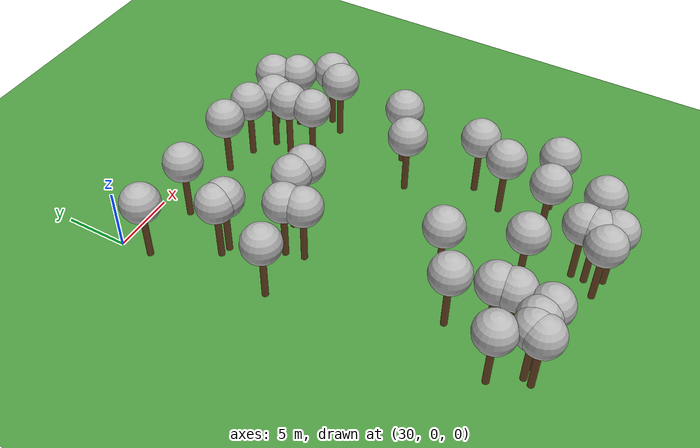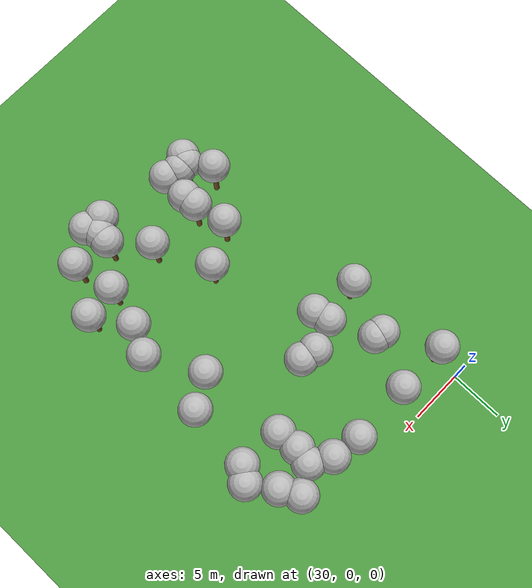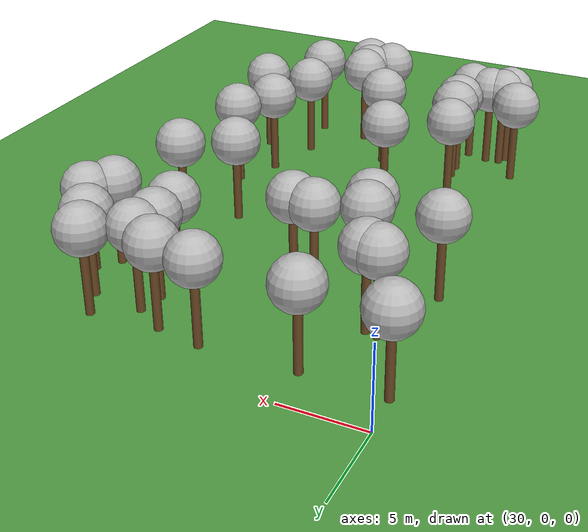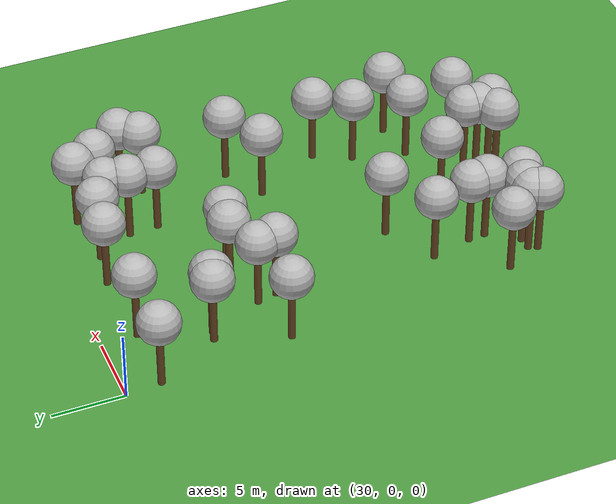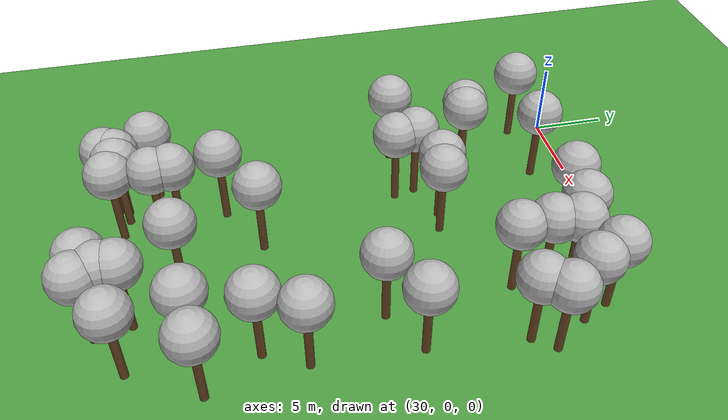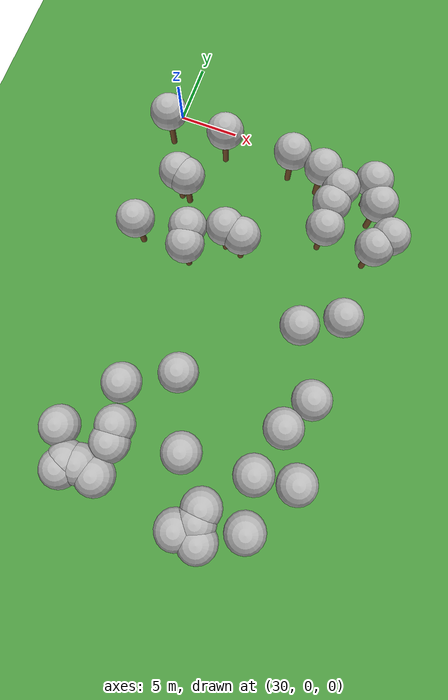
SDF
<sdf version="1.5">
 <world name="default">
  <model name="tree_simple473">
   <static>1</static>
   <link name="link">
    <pose>0 0 0.1 0 -0 0</pose>
    <collision name="collision_trunk">
     <pose>0 0 2 0 -0 0</pose>
     <geometry><cylinder><radius>0.25</radius><length>4</length></cylinder></geometry>
    </collision>
    <collision name="collision_treetop">
     <pose>0 0 5.2 0 -0 0</pose>
     <geometry><sphere><radius>1.5</radius></sphere></geometry>
    </collision>
    <visual name="trunk">
     <pose>0 0 2 0 -0 0</pose>
     <geometry><cylinder><radius>0.25</radius><length>4</length></cylinder></geometry>
     <material>
      <script>
       <uri>model://tree_simple/scripts</uri>
       <uri>model://tree_simple/materials/textures</uri>
       <name>TreeSimple/Trunk</name>
      </script>
     </material>
    </visual>
    <visual name="treetop">
     <pose>0 0 5.2 0 -0 0</pose>
     <geometry><sphere><radius>1.5</radius></sphere></geometry>
     <material>
      <script>
       <uri>model://tree_simple/scripts</uri>
       <uri>model://tree_simple/materials/textures</uri>
       <name>TreeSimple/Treetop</name>
      </script>
     </material>
    </visual>
   </link>
   <pose>35.3600050295 -12.4568326028 0 0 -0 0</pose>
  </model>
  <model name="tree_simple468">
   <static>1</static>
   <link name="link">
    <pose>0 0 0.1 0 -0 0</pose>
    <collision name="collision_trunk">
     <pose>0 0 2 0 -0 0</pose>
     <geometry><cylinder><radius>0.25</radius><length>4</length></cylinder></geometry>
    </collision>
    <collision name="collision_treetop">
     <pose>0 0 5.2 0 -0 0</pose>
     <geometry><sphere><radius>1.5</radius></sphere></geometry>
    </collision>
    <visual name="trunk">
     <pose>0 0 2 0 -0 0</pose>
     <geometry><cylinder><radius>0.25</radius><length>4</length></cylinder></geometry>
     <material>
      <script>
       <uri>model://tree_simple/scripts</uri>
       <uri>model://tree_simple/materials/textures</uri>
       <name>TreeSimple/Trunk</name>
      </script>
     </material>
    </visual>
    <visual name="treetop">
     <pose>0 0 5.2 0 -0 0</pose>
     <geometry><sphere><radius>1.5</radius></sphere></geometry>
     <material>
      <script>
       <uri>model://tree_simple/scripts</uri>
       <uri>model://tree_simple/materials/textures</uri>
       <name>TreeSimple/Treetop</name>
      </script>
     </material>
    </visual>
   </link>
   <pose>33.4354348071 -7.20044037788 0 0 -0 0</pose>
  </model>
  <model name="tree_simple461">
   <static>1</static>
   <link name="link">
    <pose>0 0 0.1 0 -0 0</pose>
    <collision name="collision_trunk">
     <pose>0 0 2 0 -0 0</pose>
     <geometry><cylinder><radius>0.25</radius><length>4</length></cylinder></geometry>
    </collision>
    <collision name="collision_treetop">
     <pose>0 0 5.2 0 -0 0</pose>
     <geometry><sphere><radius>1.5</radius></sphere></geometry>
    </collision>
    <visual name="trunk">
     <pose>0 0 2 0 -0 0</pose>
     <geometry><cylinder><radius>0.25</radius><length>4</length></cylinder></geometry>
     <material>
      <script>
       <uri>model://tree_simple/scripts</uri>
       <uri>model://tree_simple/materials/textures</uri>
       <name>TreeSimple/Trunk</name>
      </script>
     </material>
    </visual>
    <visual name="treetop">
     <pose>0 0 5.2 0 -0 0</pose>
     <geometry><sphere><radius>1.5</radius></sphere></geometry>
     <material>
      <script>
       <uri>model://tree_simple/scripts</uri>
       <uri>model://tree_simple/materials/textures</uri>
       <name>TreeSimple/Treetop</name>
      </script>
     </material>
    </visual>
   </link>
   <pose>48.4583895912 -13.8275705943 0 0 -0 0</pose>
  </model>
  <model name="tree_simple400">
   <static>1</static>
   <link name="link">
    <pose>0 0 0.1 0 -0 0</pose>
    <collision name="collision_trunk">
     <pose>0 0 2 0 -0 0</pose>
     <geometry><cylinder><radius>0.25</radius><length>4</length></cylinder></geometry>
    </collision>
    <collision name="collision_treetop">
     <pose>0 0 5.2 0 -0 0</pose>
     <geometry><sphere><radius>1.5</radius></sphere></geometry>
    </collision>
    <visual name="trunk">
     <pose>0 0 2 0 -0 0</pose>
     <geometry><cylinder><radius>0.25</radius><length>4</length></cylinder></geometry>
     <material>
      <script>
       <uri>model://tree_simple/scripts</uri>
       <uri>model://tree_simple/materials/textures</uri>
       <name>TreeSimple/Trunk</name>
      </script>
     </material>
    </visual>
    <visual name="treetop">
     <pose>0 0 5.2 0 -0 0</pose>
     <geometry><sphere><radius>1.5</radius></sphere></geometry>
     <material>
      <script>
       <uri>model://tree_simple/scripts</uri>
       <uri>model://tree_simple/materials/textures</uri>
       <name>TreeSimple/Treetop</name>
      </script>
     </material>
    </visual>
   </link>
   <pose>43.2651902792 -29.893141503 0 0 -0 0</pose>
  </model>
  <model name="tree_simple391">
   <static>1</static>
   <link name="link">
    <pose>0 0 0.1 0 -0 0</pose>
    <collision name="collision_trunk">
     <pose>0 0 2 0 -0 0</pose>
     <geometry><cylinder><radius>0.25</radius><length>4</length></cylinder></geometry>
    </collision>
    <collision name="collision_treetop">
     <pose>0 0 5.2 0 -0 0</pose>
     <geometry><sphere><radius>1.5</radius></sphere></geometry>
    </collision>
    <visual name="trunk">
     <pose>0 0 2 0 -0 0</pose>
     <geometry><cylinder><radius>0.25</radius><length>4</length></cylinder></geometry>
     <material>
      <script>
       <uri>model://tree_simple/scripts</uri>
       <uri>model://tree_simple/materials/textures</uri>
       <name>TreeSimple/Trunk</name>
      </script>
     </material>
    </visual>
    <visual name="treetop">
     <pose>0 0 5.2 0 -0 0</pose>
     <geometry><sphere><radius>1.5</radius></sphere></geometry>
     <material>
      <script>
       <uri>model://tree_simple/scripts</uri>
       <uri>model://tree_simple/materials/textures</uri>
       <name>TreeSimple/Treetop</name>
      </script>
     </material>
    </visual>
   </link>
   <pose>35.0521422103 -11.0450283788 0 0 -0 0</pose>
  </model>
  <model name="tree_simple390">
   <static>1</static>
   <link name="link">
    <pose>0 0 0.1 0 -0 0</pose>
    <collision name="collision_trunk">
     <pose>0 0 2 0 -0 0</pose>
     <geometry><cylinder><radius>0.25</radius><length>4</length></cylinder></geometry>
    </collision>
    <collision name="collision_treetop">
     <pose>0 0 5.2 0 -0 0</pose>
     <geometry><sphere><radius>1.5</radius></sphere></geometry>
    </collision>
    <visual name="trunk">
     <pose>0 0 2 0 -0 0</pose>
     <geometry><cylinder><radius>0.25</radius><length>4</length></cylinder></geometry>
     <material>
      <script>
       <uri>model://tree_simple/scripts</uri>
       <uri>model://tree_simple/materials/textures</uri>
       <name>TreeSimple/Trunk</name>
      </script>
     </material>
    </visual>
    <visual name="treetop">
     <pose>0 0 5.2 0 -0 0</pose>
     <geometry><sphere><radius>1.5</radius></sphere></geometry>
     <material>
      <script>
       <uri>model://tree_simple/scripts</uri>
       <uri>model://tree_simple/materials/textures</uri>
       <name>TreeSimple/Treetop</name>
      </script>
     </material>
    </visual>
   </link>
   <pose>34.8279648661 -23.7978261523 0 0 -0 0</pose>
  </model>
  <model name="tree_simple385">
   <static>1</static>
   <link name="link">
    <pose>0 0 0.1 0 -0 0</pose>
    <collision name="collision_trunk">
     <pose>0 0 2 0 -0 0</pose>
     <geometry><cylinder><radius>0.25</radius><length>4</length></cylinder></geometry>
    </collision>
    <collision name="collision_treetop">
     <pose>0 0 5.2 0 -0 0</pose>
     <geometry><sphere><radius>1.5</radius></sphere></geometry>
    </collision>
    <visual name="trunk">
     <pose>0 0 2 0 -0 0</pose>
     <geometry><cylinder><radius>0.25</radius><length>4</length></cylinder></geometry>
     <material>
      <script>
       <uri>model://tree_simple/scripts</uri>
       <uri>model://tree_simple/materials/textures</uri>
       <name>TreeSimple/Trunk</name>
      </script>
     </material>
    </visual>
    <visual name="treetop">
     <pose>0 0 5.2 0 -0 0</pose>
     <geometry><sphere><radius>1.5</radius></sphere></geometry>
     <material>
      <script>
       <uri>model://tree_simple/scripts</uri>
       <uri>model://tree_simple/materials/textures</uri>
       <name>TreeSimple/Treetop</name>
      </script>
     </material>
    </visual>
   </link>
   <pose>32.6946046779 -7.01468529962 0 0 -0 0</pose>
  </model>
  <model name="tree_simple380">
   <static>1</static>
   <link name="link">
    <pose>0 0 0.1 0 -0 0</pose>
    <collision name="collision_trunk">
     <pose>0 0 2 0 -0 0</pose>
     <geometry><cylinder><radius>0.25</radius><length>4</length></cylinder></geometry>
    </collision>
    <collision name="collision_treetop">
     <pose>0 0 5.2 0 -0 0</pose>
     <geometry><sphere><radius>1.5</radius></sphere></geometry>
    </collision>
    <visual name="trunk">
     <pose>0 0 2 0 -0 0</pose>
     <geometry><cylinder><radius>0.25</radius><length>4</length></cylinder></geometry>
     <material>
      <script>
       <uri>model://tree_simple/scripts</uri>
       <uri>model://tree_simple/materials/textures</uri>
       <name>TreeSimple/Trunk</name>
      </script>
     </material>
    </visual>
    <visual name="treetop">
     <pose>0 0 5.2 0 -0 0</pose>
     <geometry><sphere><radius>1.5</radius></sphere></geometry>
     <material>
      <script>
       <uri>model://tree_simple/scripts</uri>
       <uri>model://tree_simple/materials/textures</uri>
       <name>TreeSimple/Treetop</name>
      </script>
     </material>
    </visual>
   </link>
   <pose>49.0222625073 -7.79616728684 0 0 -0 0</pose>
  </model>
  <model name="tree_simple379">
   <static>1</static>
   <link name="link">
    <pose>0 0 0.1 0 -0 0</pose>
    <collision name="collision_trunk">
     <pose>0 0 2 0 -0 0</pose>
     <geometry><cylinder><radius>0.25</radius><length>4</length></cylinder></geometry>
    </collision>
    <collision name="collision_treetop">
     <pose>0 0 5.2 0 -0 0</pose>
     <geometry><sphere><radius>1.5</radius></sphere></geometry>
    </collision>
    <visual name="trunk">
     <pose>0 0 2 0 -0 0</pose>
     <geometry><cylinder><radius>0.25</radius><length>4</length></cylinder></geometry>
     <material>
      <script>
       <uri>model://tree_simple/scripts</uri>
       <uri>model://tree_simple/materials/textures</uri>
       <name>TreeSimple/Trunk</name>
      </script>
     </material>
    </visual>
    <visual name="treetop">
     <pose>0 0 5.2 0 -0 0</pose>
     <geometry><sphere><radius>1.5</radius></sphere></geometry>
     <material>
      <script>
       <uri>model://tree_simple/scripts</uri>
       <uri>model://tree_simple/materials/textures</uri>
       <name>TreeSimple/Treetop</name>
      </script>
     </material>
    </visual>
   </link>
   <pose>35.6338366469 -27.9469397224 0 0 -0 0</pose>
  </model>
  <model name="tree_simple374">
   <static>1</static>
   <link name="link">
    <pose>0 0 0.1 0 -0 0</pose>
    <collision name="collision_trunk">
     <pose>0 0 2 0 -0 0</pose>
     <geometry><cylinder><radius>0.25</radius><length>4</length></cylinder></geometry>
    </collision>
    <collision name="collision_treetop">
     <pose>0 0 5.2 0 -0 0</pose>
     <geometry><sphere><radius>1.5</radius></sphere></geometry>
    </collision>
    <visual name="trunk">
     <pose>0 0 2 0 -0 0</pose>
     <geometry><cylinder><radius>0.25</radius><length>4</length></cylinder></geometry>
     <material>
      <script>
       <uri>model://tree_simple/scripts</uri>
       <uri>model://tree_simple/materials/textures</uri>
       <name>TreeSimple/Trunk</name>
      </script>
     </material>
    </visual>
    <visual name="treetop">
     <pose>0 0 5.2 0 -0 0</pose>
     <geometry><sphere><radius>1.5</radius></sphere></geometry>
     <material>
      <script>
       <uri>model://tree_simple/scripts</uri>
       <uri>model://tree_simple/materials/textures</uri>
       <name>TreeSimple/Treetop</name>
      </script>
     </material>
    </visual>
   </link>
   <pose>45.5880490305 -15.4743351493 0 0 -0 0</pose>
  </model>
  <model name="tree_simple361">
   <static>1</static>
   <link name="link">
    <pose>0 0 0.1 0 -0 0</pose>
    <collision name="collision_trunk">
     <pose>0 0 2 0 -0 0</pose>
     <geometry><cylinder><radius>0.25</radius><length>4</length></cylinder></geometry>
    </collision>
    <collision name="collision_treetop">
     <pose>0 0 5.2 0 -0 0</pose>
     <geometry><sphere><radius>1.5</radius></sphere></geometry>
    </collision>
    <visual name="trunk">
     <pose>0 0 2 0 -0 0</pose>
     <geometry><cylinder><radius>0.25</radius><length>4</length></cylinder></geometry>
     <material>
      <script>
       <uri>model://tree_simple/scripts</uri>
       <uri>model://tree_simple/materials/textures</uri>
       <name>TreeSimple/Trunk</name>
      </script>
     </material>
    </visual>
    <visual name="treetop">
     <pose>0 0 5.2 0 -0 0</pose>
     <geometry><sphere><radius>1.5</radius></sphere></geometry>
     <material>
      <script>
       <uri>model://tree_simple/scripts</uri>
       <uri>model://tree_simple/materials/textures</uri>
       <name>TreeSimple/Treetop</name>
      </script>
     </material>
    </visual>
   </link>
   <pose>35.5366757962 -26.7239082098 0 0 -0 0</pose>
  </model>
  <model name="tree_simple352">
   <static>1</static>
   <link name="link">
    <pose>0 0 0.1 0 -0 0</pose>
    <collision name="collision_trunk">
     <pose>0 0 2 0 -0 0</pose>
     <geometry><cylinder><radius>0.25</radius><length>4</length></cylinder></geometry>
    </collision>
    <collision name="collision_treetop">
     <pose>0 0 5.2 0 -0 0</pose>
     <geometry><sphere><radius>1.5</radius></sphere></geometry>
    </collision>
    <visual name="trunk">
     <pose>0 0 2 0 -0 0</pose>
     <geometry><cylinder><radius>0.25</radius><length>4</length></cylinder></geometry>
     <material>
      <script>
       <uri>model://tree_simple/scripts</uri>
       <uri>model://tree_simple/materials/textures</uri>
       <name>TreeSimple/Trunk</name>
      </script>
     </material>
    </visual>
    <visual name="treetop">
     <pose>0 0 5.2 0 -0 0</pose>
     <geometry><sphere><radius>1.5</radius></sphere></geometry>
     <material>
      <script>
       <uri>model://tree_simple/scripts</uri>
       <uri>model://tree_simple/materials/textures</uri>
       <name>TreeSimple/Treetop</name>
      </script>
     </material>
    </visual>
   </link>
   <pose>37.7714253308 -10.085576638 0 0 -0 0</pose>
  </model>
  <model name="tree_simple330">
   <static>1</static>
   <link name="link">
    <pose>0 0 0.1 0 -0 0</pose>
    <collision name="collision_trunk">
     <pose>0 0 2 0 -0 0</pose>
     <geometry><cylinder><radius>0.25</radius><length>4</length></cylinder></geometry>
    </collision>
    <collision name="collision_treetop">
     <pose>0 0 5.2 0 -0 0</pose>
     <geometry><sphere><radius>1.5</radius></sphere></geometry>
    </collision>
    <visual name="trunk">
     <pose>0 0 2 0 -0 0</pose>
     <geometry><cylinder><radius>0.25</radius><length>4</length></cylinder></geometry>
     <material>
      <script>
       <uri>model://tree_simple/scripts</uri>
       <uri>model://tree_simple/materials/textures</uri>
       <name>TreeSimple/Trunk</name>
      </script>
     </material>
    </visual>
    <visual name="treetop">
     <pose>0 0 5.2 0 -0 0</pose>
     <geometry><sphere><radius>1.5</radius></sphere></geometry>
     <material>
      <script>
       <uri>model://tree_simple/scripts</uri>
       <uri>model://tree_simple/materials/textures</uri>
       <name>TreeSimple/Treetop</name>
      </script>
     </material>
    </visual>
   </link>
   <pose>46.6176543064 -30.3534647409 0 0 -0 0</pose>
  </model>
  <model name="tree_simple321">
   <static>1</static>
   <link name="link">
    <pose>0 0 0.1 0 -0 0</pose>
    <collision name="collision_trunk">
     <pose>0 0 2 0 -0 0</pose>
     <geometry><cylinder><radius>0.25</radius><length>4</length></cylinder></geometry>
    </collision>
    <collision name="collision_treetop">
     <pose>0 0 5.2 0 -0 0</pose>
     <geometry><sphere><radius>1.5</radius></sphere></geometry>
    </collision>
    <visual name="trunk">
     <pose>0 0 2 0 -0 0</pose>
     <geometry><cylinder><radius>0.25</radius><length>4</length></cylinder></geometry>
     <material>
      <script>
       <uri>model://tree_simple/scripts</uri>
       <uri>model://tree_simple/materials/textures</uri>
       <name>TreeSimple/Trunk</name>
      </script>
     </material>
    </visual>
    <visual name="treetop">
     <pose>0 0 5.2 0 -0 0</pose>
     <geometry><sphere><radius>1.5</radius></sphere></geometry>
     <material>
      <script>
       <uri>model://tree_simple/scripts</uri>
       <uri>model://tree_simple/materials/textures</uri>
       <name>TreeSimple/Treetop</name>
      </script>
     </material>
    </visual>
   </link>
   <pose>42.046648374 -31.7938593585 0 0 -0 0</pose>
  </model>
  <model name="tree_simple298">
   <static>1</static>
   <link name="link">
    <pose>0 0 0.1 0 -0 0</pose>
    <collision name="collision_trunk">
     <pose>0 0 2 0 -0 0</pose>
     <geometry><cylinder><radius>0.25</radius><length>4</length></cylinder></geometry>
    </collision>
    <collision name="collision_treetop">
     <pose>0 0 5.2 0 -0 0</pose>
     <geometry><sphere><radius>1.5</radius></sphere></geometry>
    </collision>
    <visual name="trunk">
     <pose>0 0 2 0 -0 0</pose>
     <geometry><cylinder><radius>0.25</radius><length>4</length></cylinder></geometry>
     <material>
      <script>
       <uri>model://tree_simple/scripts</uri>
       <uri>model://tree_simple/materials/textures</uri>
       <name>TreeSimple/Trunk</name>
      </script>
     </material>
    </visual>
    <visual name="treetop">
     <pose>0 0 5.2 0 -0 0</pose>
     <geometry><sphere><radius>1.5</radius></sphere></geometry>
     <material>
      <script>
       <uri>model://tree_simple/scripts</uri>
       <uri>model://tree_simple/materials/textures</uri>
       <name>TreeSimple/Treetop</name>
      </script>
     </material>
    </visual>
   </link>
   <pose>33.2901714534 -30.1267743678 0 0 -0 0</pose>
  </model>
  <model name="tree_simple278">
   <static>1</static>
   <link name="link">
    <pose>0 0 0.1 0 -0 0</pose>
    <collision name="collision_trunk">
     <pose>0 0 2 0 -0 0</pose>
     <geometry><cylinder><radius>0.25</radius><length>4</length></cylinder></geometry>
    </collision>
    <collision name="collision_treetop">
     <pose>0 0 5.2 0 -0 0</pose>
     <geometry><sphere><radius>1.5</radius></sphere></geometry>
    </collision>
    <visual name="trunk">
     <pose>0 0 2 0 -0 0</pose>
     <geometry><cylinder><radius>0.25</radius><length>4</length></cylinder></geometry>
     <material>
      <script>
       <uri>model://tree_simple/scripts</uri>
       <uri>model://tree_simple/materials/textures</uri>
       <name>TreeSimple/Trunk</name>
      </script>
     </material>
    </visual>
    <visual name="treetop">
     <pose>0 0 5.2 0 -0 0</pose>
     <geometry><sphere><radius>1.5</radius></sphere></geometry>
     <material>
      <script>
       <uri>model://tree_simple/scripts</uri>
       <uri>model://tree_simple/materials/textures</uri>
       <name>TreeSimple/Treetop</name>
      </script>
     </material>
    </visual>
   </link>
   <pose>38.4116061074 -21.7404675264 0 0 -0 0</pose>
  </model>
  <model name="tree_simple263">
   <static>1</static>
   <link name="link">
    <pose>0 0 0.1 0 -0 0</pose>
    <collision name="collision_trunk">
     <pose>0 0 2 0 -0 0</pose>
     <geometry><cylinder><radius>0.25</radius><length>4</length></cylinder></geometry>
    </collision>
    <collision name="collision_treetop">
     <pose>0 0 5.2 0 -0 0</pose>
     <geometry><sphere><radius>1.5</radius></sphere></geometry>
    </collision>
    <visual name="trunk">
     <pose>0 0 2 0 -0 0</pose>
     <geometry><cylinder><radius>0.25</radius><length>4</length></cylinder></geometry>
     <material>
      <script>
       <uri>model://tree_simple/scripts</uri>
       <uri>model://tree_simple/materials/textures</uri>
       <name>TreeSimple/Trunk</name>
      </script>
     </material>
    </visual>
    <visual name="treetop">
     <pose>0 0 5.2 0 -0 0</pose>
     <geometry><sphere><radius>1.5</radius></sphere></geometry>
     <material>
      <script>
       <uri>model://tree_simple/scripts</uri>
       <uri>model://tree_simple/materials/textures</uri>
       <name>TreeSimple/Treetop</name>
      </script>
     </material>
    </visual>
   </link>
   <pose>40.6294575453 -26.8945764261 0 0 -0 0</pose>
  </model>
  <model name="tree_simple244">
   <static>1</static>
   <link name="link">
    <pose>0 0 0.1 0 -0 0</pose>
    <collision name="collision_trunk">
     <pose>0 0 2 0 -0 0</pose>
     <geometry><cylinder><radius>0.25</radius><length>4</length></cylinder></geometry>
    </collision>
    <collision name="collision_treetop">
     <pose>0 0 5.2 0 -0 0</pose>
     <geometry><sphere><radius>1.5</radius></sphere></geometry>
    </collision>
    <visual name="trunk">
     <pose>0 0 2 0 -0 0</pose>
     <geometry><cylinder><radius>0.25</radius><length>4</length></cylinder></geometry>
     <material>
      <script>
       <uri>model://tree_simple/scripts</uri>
       <uri>model://tree_simple/materials/textures</uri>
       <name>TreeSimple/Trunk</name>
      </script>
     </material>
    </visual>
    <visual name="treetop">
     <pose>0 0 5.2 0 -0 0</pose>
     <geometry><sphere><radius>1.5</radius></sphere></geometry>
     <material>
      <script>
       <uri>model://tree_simple/scripts</uri>
       <uri>model://tree_simple/materials/textures</uri>
       <name>TreeSimple/Treetop</name>
      </script>
     </material>
    </visual>
   </link>
   <pose>45.1720023685 -3.9344800414 0 0 -0 0</pose>
  </model>
  <model name="tree_simple243">
   <static>1</static>
   <link name="link">
    <pose>0 0 0.1 0 -0 0</pose>
    <collision name="collision_trunk">
     <pose>0 0 2 0 -0 0</pose>
     <geometry><cylinder><radius>0.25</radius><length>4</length></cylinder></geometry>
    </collision>
    <collision name="collision_treetop">
     <pose>0 0 5.2 0 -0 0</pose>
     <geometry><sphere><radius>1.5</radius></sphere></geometry>
    </collision>
    <visual name="trunk">
     <pose>0 0 2 0 -0 0</pose>
     <geometry><cylinder><radius>0.25</radius><length>4</length></cylinder></geometry>
     <material>
      <script>
       <uri>model://tree_simple/scripts</uri>
       <uri>model://tree_simple/materials/textures</uri>
       <name>TreeSimple/Trunk</name>
      </script>
     </material>
    </visual>
    <visual name="treetop">
     <pose>0 0 5.2 0 -0 0</pose>
     <geometry><sphere><radius>1.5</radius></sphere></geometry>
     <material>
      <script>
       <uri>model://tree_simple/scripts</uri>
       <uri>model://tree_simple/materials/textures</uri>
       <name>TreeSimple/Treetop</name>
      </script>
     </material>
    </visual>
   </link>
   <pose>48.9656449897 -26.1871742827 0 0 -0 0</pose>
  </model>
  <model name="tree_simple235">
   <static>1</static>
   <link name="link">
    <pose>0 0 0.1 0 -0 0</pose>
    <collision name="collision_trunk">
     <pose>0 0 2 0 -0 0</pose>
     <geometry><cylinder><radius>0.25</radius><length>4</length></cylinder></geometry>
    </collision>
    <collision name="collision_treetop">
     <pose>0 0 5.2 0 -0 0</pose>
     <geometry><sphere><radius>1.5</radius></sphere></geometry>
    </collision>
    <visual name="trunk">
     <pose>0 0 2 0 -0 0</pose>
     <geometry><cylinder><radius>0.25</radius><length>4</length></cylinder></geometry>
     <material>
      <script>
       <uri>model://tree_simple/scripts</uri>
       <uri>model://tree_simple/materials/textures</uri>
       <name>TreeSimple/Trunk</name>
      </script>
     </material>
    </visual>
    <visual name="treetop">
     <pose>0 0 5.2 0 -0 0</pose>
     <geometry><sphere><radius>1.5</radius></sphere></geometry>
     <material>
      <script>
       <uri>model://tree_simple/scripts</uri>
       <uri>model://tree_simple/materials/textures</uri>
       <name>TreeSimple/Treetop</name>
      </script>
     </material>
    </visual>
   </link>
   <pose>47.4649473564 -2.51877980815 0 0 -0 0</pose>
  </model>
  <model name="tree_simple210">
   <static>1</static>
   <link name="link">
    <pose>0 0 0.1 0 -0 0</pose>
    <collision name="collision_trunk">
     <pose>0 0 2 0 -0 0</pose>
     <geometry><cylinder><radius>0.25</radius><length>4</length></cylinder></geometry>
    </collision>
    <collision name="collision_treetop">
     <pose>0 0 5.2 0 -0 0</pose>
     <geometry><sphere><radius>1.5</radius></sphere></geometry>
    </collision>
    <visual name="trunk">
     <pose>0 0 2 0 -0 0</pose>
     <geometry><cylinder><radius>0.25</radius><length>4</length></cylinder></geometry>
     <material>
      <script>
       <uri>model://tree_simple/scripts</uri>
       <uri>model://tree_simple/materials/textures</uri>
       <name>TreeSimple/Trunk</name>
      </script>
     </material>
    </visual>
    <visual name="treetop">
     <pose>0 0 5.2 0 -0 0</pose>
     <geometry><sphere><radius>1.5</radius></sphere></geometry>
     <material>
      <script>
       <uri>model://tree_simple/scripts</uri>
       <uri>model://tree_simple/materials/textures</uri>
       <name>TreeSimple/Treetop</name>
      </script>
     </material>
    </visual>
   </link>
   <pose>49.9611404215 -6.54237160605 0 0 -0 0</pose>
  </model>
  <model name="tree_simple206">
   <static>1</static>
   <link name="link">
    <pose>0 0 0.1 0 -0 0</pose>
    <collision name="collision_trunk">
     <pose>0 0 2 0 -0 0</pose>
     <geometry><cylinder><radius>0.25</radius><length>4</length></cylinder></geometry>
    </collision>
    <collision name="collision_treetop">
     <pose>0 0 5.2 0 -0 0</pose>
     <geometry><sphere><radius>1.5</radius></sphere></geometry>
    </collision>
    <visual name="trunk">
     <pose>0 0 2 0 -0 0</pose>
     <geometry><cylinder><radius>0.25</radius><length>4</length></cylinder></geometry>
     <material>
      <script>
       <uri>model://tree_simple/scripts</uri>
       <uri>model://tree_simple/materials/textures</uri>
       <name>TreeSimple/Trunk</name>
      </script>
     </material>
    </visual>
    <visual name="treetop">
     <pose>0 0 5.2 0 -0 0</pose>
     <geometry><sphere><radius>1.5</radius></sphere></geometry>
     <material>
      <script>
       <uri>model://tree_simple/scripts</uri>
       <uri>model://tree_simple/materials/textures</uri>
       <name>TreeSimple/Treetop</name>
      </script>
     </material>
    </visual>
   </link>
   <pose>46.8540816615 -22.8682209639 0 0 -0 0</pose>
  </model>
  <model name="tree_simple204">
   <static>1</static>
   <link name="link">
    <pose>0 0 0.1 0 -0 0</pose>
    <collision name="collision_trunk">
     <pose>0 0 2 0 -0 0</pose>
     <geometry><cylinder><radius>0.25</radius><length>4</length></cylinder></geometry>
    </collision>
    <collision name="collision_treetop">
     <pose>0 0 5.2 0 -0 0</pose>
     <geometry><sphere><radius>1.5</radius></sphere></geometry>
    </collision>
    <visual name="trunk">
     <pose>0 0 2 0 -0 0</pose>
     <geometry><cylinder><radius>0.25</radius><length>4</length></cylinder></geometry>
     <material>
      <script>
       <uri>model://tree_simple/scripts</uri>
       <uri>model://tree_simple/materials/textures</uri>
       <name>TreeSimple/Trunk</name>
      </script>
     </material>
    </visual>
    <visual name="treetop">
     <pose>0 0 5.2 0 -0 0</pose>
     <geometry><sphere><radius>1.5</radius></sphere></geometry>
     <material>
      <script>
       <uri>model://tree_simple/scripts</uri>
       <uri>model://tree_simple/materials/textures</uri>
       <name>TreeSimple/Treetop</name>
      </script>
     </material>
    </visual>
   </link>
   <pose>40.6572947186 -2.37352514754 0 0 -0 0</pose>
  </model>
  <model name="tree_simple203">
   <static>1</static>
   <link name="link">
    <pose>0 0 0.1 0 -0 0</pose>
    <collision name="collision_trunk">
     <pose>0 0 2 0 -0 0</pose>
     <geometry><cylinder><radius>0.25</radius><length>4</length></cylinder></geometry>
    </collision>
    <collision name="collision_treetop">
     <pose>0 0 5.2 0 -0 0</pose>
     <geometry><sphere><radius>1.5</radius></sphere></geometry>
    </collision>
    <visual name="trunk">
     <pose>0 0 2 0 -0 0</pose>
     <geometry><cylinder><radius>0.25</radius><length>4</length></cylinder></geometry>
     <material>
      <script>
       <uri>model://tree_simple/scripts</uri>
       <uri>model://tree_simple/materials/textures</uri>
       <name>TreeSimple/Trunk</name>
      </script>
     </material>
    </visual>
    <visual name="treetop">
     <pose>0 0 5.2 0 -0 0</pose>
     <geometry><sphere><radius>1.5</radius></sphere></geometry>
     <material>
      <script>
       <uri>model://tree_simple/scripts</uri>
       <uri>model://tree_simple/materials/textures</uri>
       <name>TreeSimple/Treetop</name>
      </script>
     </material>
    </visual>
   </link>
   <pose>48.3599333119 -4.25982043144 0 0 -0 0</pose>
  </model>
  <model name="tree_simple192">
   <static>1</static>
   <link name="link">
    <pose>0 0 0.1 0 -0 0</pose>
    <collision name="collision_trunk">
     <pose>0 0 2 0 -0 0</pose>
     <geometry><cylinder><radius>0.25</radius><length>4</length></cylinder></geometry>
    </collision>
    <collision name="collision_treetop">
     <pose>0 0 5.2 0 -0 0</pose>
     <geometry><sphere><radius>1.5</radius></sphere></geometry>
    </collision>
    <visual name="trunk">
     <pose>0 0 2 0 -0 0</pose>
     <geometry><cylinder><radius>0.25</radius><length>4</length></cylinder></geometry>
     <material>
      <script>
       <uri>model://tree_simple/scripts</uri>
       <uri>model://tree_simple/materials/textures</uri>
       <name>TreeSimple/Trunk</name>
      </script>
     </material>
    </visual>
    <visual name="treetop">
     <pose>0 0 5.2 0 -0 0</pose>
     <geometry><sphere><radius>1.5</radius></sphere></geometry>
     <material>
      <script>
       <uri>model://tree_simple/scripts</uri>
       <uri>model://tree_simple/materials/textures</uri>
       <name>TreeSimple/Treetop</name>
      </script>
     </material>
    </visual>
   </link>
   <pose>39.1897553286 -10.376920586 0 0 -0 0</pose>
  </model>
  <model name="tree_simple185">
   <static>1</static>
   <link name="link">
    <pose>0 0 0.1 0 -0 0</pose>
    <collision name="collision_trunk">
     <pose>0 0 2 0 -0 0</pose>
     <geometry><cylinder><radius>0.25</radius><length>4</length></cylinder></geometry>
    </collision>
    <collision name="collision_treetop">
     <pose>0 0 5.2 0 -0 0</pose>
     <geometry><sphere><radius>1.5</radius></sphere></geometry>
    </collision>
    <visual name="trunk">
     <pose>0 0 2 0 -0 0</pose>
     <geometry><cylinder><radius>0.25</radius><length>4</length></cylinder></geometry>
     <material>
      <script>
       <uri>model://tree_simple/scripts</uri>
       <uri>model://tree_simple/materials/textures</uri>
       <name>TreeSimple/Trunk</name>
      </script>
     </material>
    </visual>
    <visual name="treetop">
     <pose>0 0 5.2 0 -0 0</pose>
     <geometry><sphere><radius>1.5</radius></sphere></geometry>
     <material>
      <script>
       <uri>model://tree_simple/scripts</uri>
       <uri>model://tree_simple/materials/textures</uri>
       <name>TreeSimple/Treetop</name>
      </script>
     </material>
    </visual>
   </link>
   <pose>48.1272235893 -20.3232479012 0 0 -0 0</pose>
  </model>
  <model name="tree_simple179">
   <static>1</static>
   <link name="link">
    <pose>0 0 0.1 0 -0 0</pose>
    <collision name="collision_trunk">
     <pose>0 0 2 0 -0 0</pose>
     <geometry><cylinder><radius>0.25</radius><length>4</length></cylinder></geometry>
    </collision>
    <collision name="collision_treetop">
     <pose>0 0 5.2 0 -0 0</pose>
     <geometry><sphere><radius>1.5</radius></sphere></geometry>
    </collision>
    <visual name="trunk">
     <pose>0 0 2 0 -0 0</pose>
     <geometry><cylinder><radius>0.25</radius><length>4</length></cylinder></geometry>
     <material>
      <script>
       <uri>model://tree_simple/scripts</uri>
       <uri>model://tree_simple/materials/textures</uri>
       <name>TreeSimple/Trunk</name>
      </script>
     </material>
    </visual>
    <visual name="treetop">
     <pose>0 0 5.2 0 -0 0</pose>
     <geometry><sphere><radius>1.5</radius></sphere></geometry>
     <material>
      <script>
       <uri>model://tree_simple/scripts</uri>
       <uri>model://tree_simple/materials/textures</uri>
       <name>TreeSimple/Treetop</name>
      </script>
     </material>
    </visual>
   </link>
   <pose>33.0376036796 -30.7285936232 0 0 -0 0</pose>
  </model>
  <model name="tree_simple137">
   <static>1</static>
   <link name="link">
    <pose>0 0 0.1 0 -0 0</pose>
    <collision name="collision_trunk">
     <pose>0 0 2 0 -0 0</pose>
     <geometry><cylinder><radius>0.25</radius><length>4</length></cylinder></geometry>
    </collision>
    <collision name="collision_treetop">
     <pose>0 0 5.2 0 -0 0</pose>
     <geometry><sphere><radius>1.5</radius></sphere></geometry>
    </collision>
    <visual name="trunk">
     <pose>0 0 2 0 -0 0</pose>
     <geometry><cylinder><radius>0.25</radius><length>4</length></cylinder></geometry>
     <material>
      <script>
       <uri>model://tree_simple/scripts</uri>
       <uri>model://tree_simple/materials/textures</uri>
       <name>TreeSimple/Trunk</name>
      </script>
     </material>
    </visual>
    <visual name="treetop">
     <pose>0 0 5.2 0 -0 0</pose>
     <geometry><sphere><radius>1.5</radius></sphere></geometry>
     <material>
      <script>
       <uri>model://tree_simple/scripts</uri>
       <uri>model://tree_simple/materials/textures</uri>
       <name>TreeSimple/Treetop</name>
      </script>
     </material>
    </visual>
   </link>
   <pose>43.7452610824 -32.0584108729 0 0 -0 0</pose>
  </model>
  <model name="tree_simple133">
   <static>1</static>
   <link name="link">
    <pose>0 0 0.1 0 -0 0</pose>
    <collision name="collision_trunk">
     <pose>0 0 2 0 -0 0</pose>
     <geometry><cylinder><radius>0.25</radius><length>4</length></cylinder></geometry>
    </collision>
    <collision name="collision_treetop">
     <pose>0 0 5.2 0 -0 0</pose>
     <geometry><sphere><radius>1.5</radius></sphere></geometry>
    </collision>
    <visual name="trunk">
     <pose>0 0 2 0 -0 0</pose>
     <geometry><cylinder><radius>0.25</radius><length>4</length></cylinder></geometry>
     <material>
      <script>
       <uri>model://tree_simple/scripts</uri>
       <uri>model://tree_simple/materials/textures</uri>
       <name>TreeSimple/Trunk</name>
      </script>
     </material>
    </visual>
    <visual name="treetop">
     <pose>0 0 5.2 0 -0 0</pose>
     <geometry><sphere><radius>1.5</radius></sphere></geometry>
     <material>
      <script>
       <uri>model://tree_simple/scripts</uri>
       <uri>model://tree_simple/materials/textures</uri>
       <name>TreeSimple/Treetop</name>
      </script>
     </material>
    </visual>
   </link>
   <pose>34.1791859659 -30.0610700111 0 0 -0 0</pose>
  </model>
  <model name="tree_simple128">
   <static>1</static>
   <link name="link">
    <pose>0 0 0.1 0 -0 0</pose>
    <collision name="collision_trunk">
     <pose>0 0 2 0 -0 0</pose>
     <geometry><cylinder><radius>0.25</radius><length>4</length></cylinder></geometry>
    </collision>
    <collision name="collision_treetop">
     <pose>0 0 5.2 0 -0 0</pose>
     <geometry><sphere><radius>1.5</radius></sphere></geometry>
    </collision>
    <visual name="trunk">
     <pose>0 0 2 0 -0 0</pose>
     <geometry><cylinder><radius>0.25</radius><length>4</length></cylinder></geometry>
     <material>
      <script>
       <uri>model://tree_simple/scripts</uri>
       <uri>model://tree_simple/materials/textures</uri>
       <name>TreeSimple/Trunk</name>
      </script>
     </material>
    </visual>
    <visual name="treetop">
     <pose>0 0 5.2 0 -0 0</pose>
     <geometry><sphere><radius>1.5</radius></sphere></geometry>
     <material>
      <script>
       <uri>model://tree_simple/scripts</uri>
       <uri>model://tree_simple/materials/textures</uri>
       <name>TreeSimple/Treetop</name>
      </script>
     </material>
    </visual>
   </link>
   <pose>45.9201829733 -26.5855260125 0 0 -0 0</pose>
  </model>
  <model name="tree_simple118">
   <static>1</static>
   <link name="link">
    <pose>0 0 0.1 0 -0 0</pose>
    <collision name="collision_trunk">
     <pose>0 0 2 0 -0 0</pose>
     <geometry><cylinder><radius>0.25</radius><length>4</length></cylinder></geometry>
    </collision>
    <collision name="collision_treetop">
     <pose>0 0 5.2 0 -0 0</pose>
     <geometry><sphere><radius>1.5</radius></sphere></geometry>
    </collision>
    <visual name="trunk">
     <pose>0 0 2 0 -0 0</pose>
     <geometry><cylinder><radius>0.25</radius><length>4</length></cylinder></geometry>
     <material>
      <script>
       <uri>model://tree_simple/scripts</uri>
       <uri>model://tree_simple/materials/textures</uri>
       <name>TreeSimple/Trunk</name>
      </script>
     </material>
    </visual>
    <visual name="treetop">
     <pose>0 0 5.2 0 -0 0</pose>
     <geometry><sphere><radius>1.5</radius></sphere></geometry>
     <material>
      <script>
       <uri>model://tree_simple/scripts</uri>
       <uri>model://tree_simple/materials/textures</uri>
       <name>TreeSimple/Treetop</name>
      </script>
     </material>
    </visual>
   </link>
   <pose>35.015129688 -2.52683434866 0 0 -0 0</pose>
  </model>
  <model name="tree_simple70">
   <static>1</static>
   <link name="link">
    <pose>0 0 0.1 0 -0 0</pose>
    <collision name="collision_trunk">
     <pose>0 0 2 0 -0 0</pose>
     <geometry><cylinder><radius>0.25</radius><length>4</length></cylinder></geometry>
    </collision>
    <collision name="collision_treetop">
     <pose>0 0 5.2 0 -0 0</pose>
     <geometry><sphere><radius>1.5</radius></sphere></geometry>
    </collision>
    <visual name="trunk">
     <pose>0 0 2 0 -0 0</pose>
     <geometry><cylinder><radius>0.25</radius><length>4</length></cylinder></geometry>
     <material>
      <script>
       <uri>model://tree_simple/scripts</uri>
       <uri>model://tree_simple/materials/textures</uri>
       <name>TreeSimple/Trunk</name>
      </script>
     </material>
    </visual>
    <visual name="treetop">
     <pose>0 0 5.2 0 -0 0</pose>
     <geometry><sphere><radius>1.5</radius></sphere></geometry>
     <material>
      <script>
       <uri>model://tree_simple/scripts</uri>
       <uri>model://tree_simple/materials/textures</uri>
       <name>TreeSimple/Treetop</name>
      </script>
     </material>
    </visual>
   </link>
   <pose>30.1542629043 -2.46185450146 0 0 -0 0</pose>
  </model>
  <model name="tree_simple68">
   <static>1</static>
   <link name="link">
    <pose>0 0 0.1 0 -0 0</pose>
    <collision name="collision_trunk">
     <pose>0 0 2 0 -0 0</pose>
     <geometry><cylinder><radius>0.25</radius><length>4</length></cylinder></geometry>
    </collision>
    <collision name="collision_treetop">
     <pose>0 0 5.2 0 -0 0</pose>
     <geometry><sphere><radius>1.5</radius></sphere></geometry>
    </collision>
    <visual name="trunk">
     <pose>0 0 2 0 -0 0</pose>
     <geometry><cylinder><radius>0.25</radius><length>4</length></cylinder></geometry>
     <material>
      <script>
       <uri>model://tree_simple/scripts</uri>
       <uri>model://tree_simple/materials/textures</uri>
       <name>TreeSimple/Trunk</name>
      </script>
     </material>
    </visual>
    <visual name="treetop">
     <pose>0 0 5.2 0 -0 0</pose>
     <geometry><sphere><radius>1.5</radius></sphere></geometry>
     <material>
      <script>
       <uri>model://tree_simple/scripts</uri>
       <uri>model://tree_simple/materials/textures</uri>
       <name>TreeSimple/Treetop</name>
      </script>
     </material>
    </visual>
   </link>
   <pose>43.3405594591 -2.82078180006 0 0 -0 0</pose>
  </model>
  <model name="tree_simple63">
   <static>1</static>
   <link name="link">
    <pose>0 0 0.1 0 -0 0</pose>
    <collision name="collision_trunk">
     <pose>0 0 2 0 -0 0</pose>
     <geometry><cylinder><radius>0.25</radius><length>4</length></cylinder></geometry>
    </collision>
    <collision name="collision_treetop">
     <pose>0 0 5.2 0 -0 0</pose>
     <geometry><sphere><radius>1.5</radius></sphere></geometry>
    </collision>
    <visual name="trunk">
     <pose>0 0 2 0 -0 0</pose>
     <geometry><cylinder><radius>0.25</radius><length>4</length></cylinder></geometry>
     <material>
      <script>
       <uri>model://tree_simple/scripts</uri>
       <uri>model://tree_simple/materials/textures</uri>
       <name>TreeSimple/Trunk</name>
      </script>
     </material>
    </visual>
    <visual name="treetop">
     <pose>0 0 5.2 0 -0 0</pose>
     <geometry><sphere><radius>1.5</radius></sphere></geometry>
     <material>
      <script>
       <uri>model://tree_simple/scripts</uri>
       <uri>model://tree_simple/materials/textures</uri>
       <name>TreeSimple/Treetop</name>
      </script>
     </material>
    </visual>
   </link>
   <pose>31.040163495 -11.8389088534 0 0 -0 0</pose>
  </model>
  <model name="tree_simple57">
   <static>1</static>
   <link name="link">
    <pose>0 0 0.1 0 -0 0</pose>
    <collision name="collision_trunk">
     <pose>0 0 2 0 -0 0</pose>
     <geometry><cylinder><radius>0.25</radius><length>4</length></cylinder></geometry>
    </collision>
    <collision name="collision_treetop">
     <pose>0 0 5.2 0 -0 0</pose>
     <geometry><sphere><radius>1.5</radius></sphere></geometry>
    </collision>
    <visual name="trunk">
     <pose>0 0 2 0 -0 0</pose>
     <geometry><cylinder><radius>0.25</radius><length>4</length></cylinder></geometry>
     <material>
      <script>
       <uri>model://tree_simple/scripts</uri>
       <uri>model://tree_simple/materials/textures</uri>
       <name>TreeSimple/Trunk</name>
      </script>
     </material>
    </visual>
    <visual name="treetop">
     <pose>0 0 5.2 0 -0 0</pose>
     <geometry><sphere><radius>1.5</radius></sphere></geometry>
     <material>
      <script>
       <uri>model://tree_simple/scripts</uri>
       <uri>model://tree_simple/materials/textures</uri>
       <name>TreeSimple/Treetop</name>
      </script>
     </material>
    </visual>
   </link>
   <pose>43.2092275704 -30.8438737216 0 0 -0 0</pose>
  </model>
  <model name="tree_simple28">
   <static>1</static>
   <link name="link">
    <pose>0 0 0.1 0 -0 0</pose>
    <collision name="collision_trunk">
     <pose>0 0 2 0 -0 0</pose>
     <geometry><cylinder><radius>0.25</radius><length>4</length></cylinder></geometry>
    </collision>
    <collision name="collision_treetop">
     <pose>0 0 5.2 0 -0 0</pose>
     <geometry><sphere><radius>1.5</radius></sphere></geometry>
    </collision>
    <visual name="trunk">
     <pose>0 0 2 0 -0 0</pose>
     <geometry><cylinder><radius>0.25</radius><length>4</length></cylinder></geometry>
     <material>
      <script>
       <uri>model://tree_simple/scripts</uri>
       <uri>model://tree_simple/materials/textures</uri>
       <name>TreeSimple/Trunk</name>
      </script>
     </material>
    </visual>
    <visual name="treetop">
     <pose>0 0 5.2 0 -0 0</pose>
     <geometry><sphere><radius>1.5</radius></sphere></geometry>
     <material>
      <script>
       <uri>model://tree_simple/scripts</uri>
       <uri>model://tree_simple/materials/textures</uri>
       <name>TreeSimple/Treetop</name>
      </script>
     </material>
    </visual>
   </link>
   <pose>44.9993852847 -7.51228385963 0 0 -0 0</pose>
  </model>
  <model name="tree_simple9">
   <static>1</static>
   <link name="link">
    <pose>0 0 0.1 0 -0 0</pose>
    <collision name="collision_trunk">
     <pose>0 0 2 0 -0 0</pose>
     <geometry><cylinder><radius>0.25</radius><length>4</length></cylinder></geometry>
    </collision>
    <collision name="collision_treetop">
     <pose>0 0 5.2 0 -0 0</pose>
     <geometry><sphere><radius>1.5</radius></sphere></geometry>
    </collision>
    <visual name="trunk">
     <pose>0 0 2 0 -0 0</pose>
     <geometry><cylinder><radius>0.25</radius><length>4</length></cylinder></geometry>
     <material>
      <script>
       <uri>model://tree_simple/scripts</uri>
       <uri>model://tree_simple/materials/textures</uri>
       <name>TreeSimple/Trunk</name>
      </script>
     </material>
    </visual>
    <visual name="treetop">
     <pose>0 0 5.2 0 -0 0</pose>
     <geometry><sphere><radius>1.5</radius></sphere></geometry>
     <material>
      <script>
       <uri>model://tree_simple/scripts</uri>
       <uri>model://tree_simple/materials/textures</uri>
       <name>TreeSimple/Treetop</name>
      </script>
     </material>
    </visual>
   </link>
   <pose>31.866196036 -28.0908269066 0 0 -0 0</pose>
  </model>
  <model name="tree_simple6">
   <static>1</static>
   <link name="link">
    <pose>0 0 0.1 0 -0 0</pose>
    <collision name="collision_trunk">
     <pose>0 0 2 0 -0 0</pose>
     <geometry><cylinder><radius>0.25</radius><length>4</length></cylinder></geometry>
    </collision>
    <collision name="collision_treetop">
     <pose>0 0 5.2 0 -0 0</pose>
     <geometry><sphere><radius>1.5</radius></sphere></geometry>
    </collision>
    <visual name="trunk">
     <pose>0 0 2 0 -0 0</pose>
     <geometry><cylinder><radius>0.25</radius><length>4</length></cylinder></geometry>
     <material>
      <script>
       <uri>model://tree_simple/scripts</uri>
       <uri>model://tree_simple/materials/textures</uri>
       <name>TreeSimple/Trunk</name>
      </script>
     </material>
    </visual>
    <visual name="treetop">
     <pose>0 0 5.2 0 -0 0</pose>
     <geometry><sphere><radius>1.5</radius></sphere></geometry>
     <material>
      <script>
       <uri>model://tree_simple/scripts</uri>
       <uri>model://tree_simple/materials/textures</uri>
       <name>TreeSimple/Treetop</name>
      </script>
     </material>
    </visual>
   </link>
   <pose>44.880609436 -5.45728442978 0 0 -0 0</pose>
  </model>
  <model name="tree_simple1">
   <static>1</static>
   <link name="link">
    <pose>0 0 0.1 0 -0 0</pose>
    <collision name="collision_trunk">
     <pose>0 0 2 0 -0 0</pose>
     <geometry><cylinder><radius>0.25</radius><length>4</length></cylinder></geometry>
    </collision>
    <collision name="collision_treetop">
     <pose>0 0 5.2 0 -0 0</pose>
     <geometry><sphere><radius>1.5</radius></sphere></geometry>
    </collision>
    <visual name="trunk">
     <pose>0 0 2 0 -0 0</pose>
     <geometry><cylinder><radius>0.25</radius><length>4</length></cylinder></geometry>
     <material>
      <script>
       <uri>model://tree_simple/scripts</uri>
       <uri>model://tree_simple/materials/textures</uri>
       <name>TreeSimple/Trunk</name>
      </script>
     </material>
    </visual>
    <visual name="treetop">
     <pose>0 0 5.2 0 -0 0</pose>
     <geometry><sphere><radius>1.5</radius></sphere></geometry>
     <material>
      <script>
       <uri>model://tree_simple/scripts</uri>
       <uri>model://tree_simple/materials/textures</uri>
       <name>TreeSimple/Treetop</name>
      </script>
     </material>
    </visual>
   </link>
   <pose>35.5272832609 -30.417089687 0 0 -0 0</pose>
  </model>
  <model name="ground_plane">
   <static>true</static>
   <link name="link">
    <collision name="collision">
     <geometry><plane><normal>0 0 1</normal><size>250 250</size></plane></geometry>
     <surface><friction><ode><mu>100</mu><mu2>50</mu2></ode></friction></surface>
    </collision>
    <visual name="grass">
     <cast_shadows>false</cast_shadows>
     <geometry><plane><normal>0 0 1</normal><size>150 250</size></plane></geometry>
     <material>
      <script><uri>file://media/materials/scripts/gazebo.material</uri><name>Gazebo/Grass</name></script>
     </material>
    </visual>
   </link>
  </model>
 </world>
</sdf>
